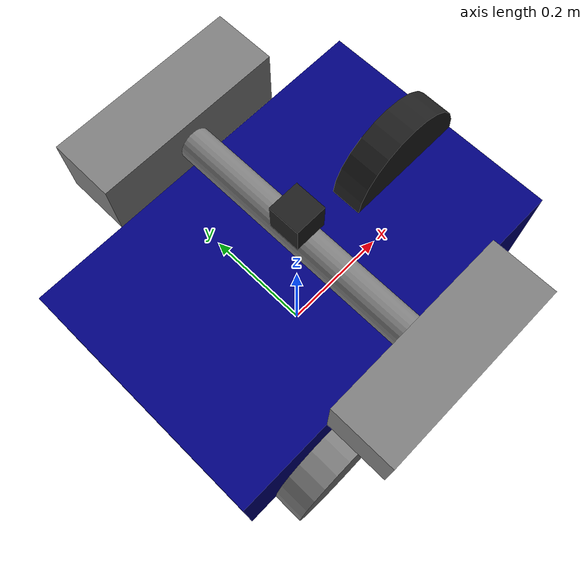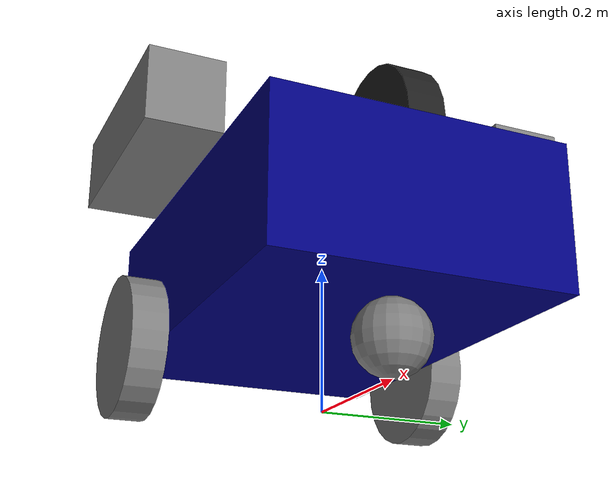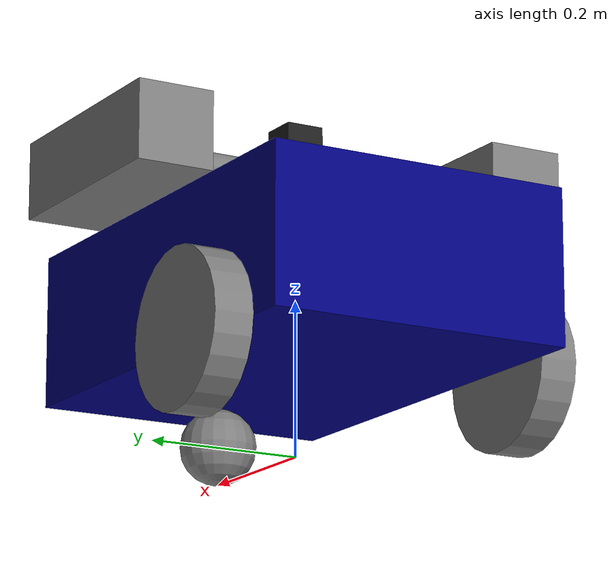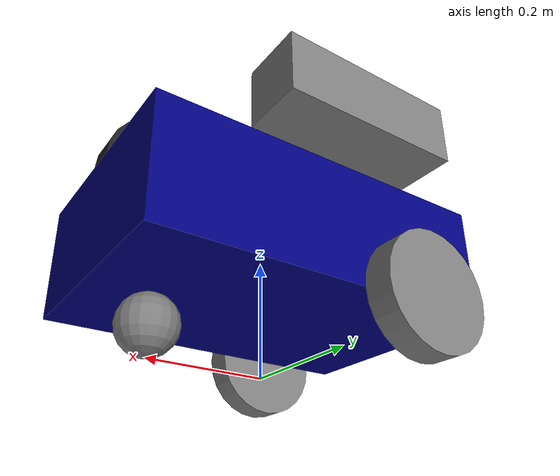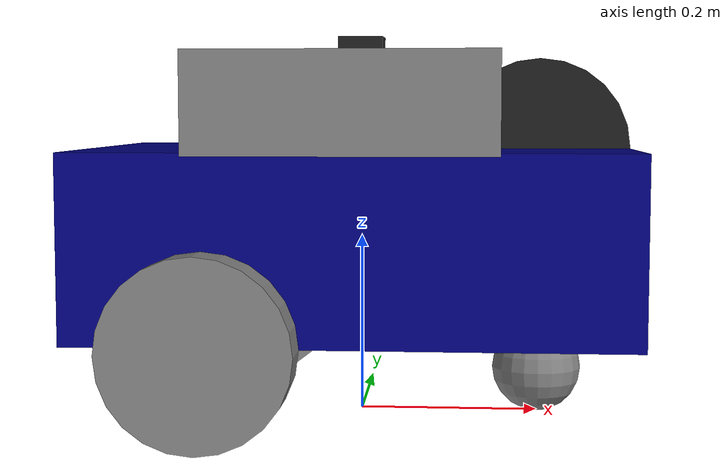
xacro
<?xml version="1.0"?>
<robot name="potatobot" xmlns:xacro="http://www.ros.org/wiki/xacro">

<!--Xacro allows to add in variables, as seen below-->
<!--Include Xacro packages-->
    <xacro:include filename="common_properties.xacro" />
    <xacro:include filename="mobile_base_potatobot_gazebo.xacro" />

<!--Note - you can define more complex components in their own .xacro file to add to the robot file-->
<!--Defining some xacro variables. Defined as xacro:property. Give a name and a value in order to use elsewhere. Changing here will adjust in the whole file.-->
    <xacro:property name="base_length" value="0.6" />
    <xacro:property name="base_width" value="0.4" />
    <xacro:property name="base_height" value="0.2" />
    <xacro:property name="wheel_radius" value="0.1" />
    <xacro:property name="wheel_length" value="0.05" />

    <xacro:property name="pusher_arm_radius" value="0.025" />
    <xacro:property name="pusher_arm_length" value="0.4" />
    <xacro:property name="pusher_length" value="0.1" />
    <xacro:property name="pusher_width" value="0.3" />
    <xacro:property name="pusher_height" value="0.1" />

<!--Materials defied here, no need for exceptional appearance. Color is fine to save resources-->
    <material name="blue">
        <color rgba="0 0 0.5 1" />
    </material>

    <material name="grey">
        <color rgba="0.5 0.5 0.5 1" />
    </material>

    <link name="base_footprint" /> <!--Self closing link tag, no properties-->
    <!--Link tags here. Links are physical structures in the robot. Joints connect links, can be moveable or immovable-->
    <!--Put all links first and then add joints to keep track-->

    <link name="base_link">
        <visual>
            <geometry>
                <box size="${base_length} ${base_width} ${base_height}" />
            </geometry>
            <origin xyz = "0 0 ${base_height / 2}" rpy="0 0 0" /> <!--Define origin of the shape - set to center of object-->
            <material name="blue" /> <!--Xacro defined the material, line 15. Reusing the name calls back to the predefined variable, allowing you to save time and shorthand-->
        </visual>

        <collision>
            <geometry>
                <box size="${base_length} ${base_width} ${base_height}" />
            </geometry>
            <origin xyz = "0 0 ${base_height}/2" rpy="0 0 0" />
        </collision>
        <!--Generally, collision and visual will be the same. The exception is the wheel which uses a sphere collision rather than a cylinder, as it behaves oddly otherwise.-->
        <xacro:box_inertia m="5.0" x="${base_length}" y="${base_width}" z="${base_height}" o_xyz="0 0 ${base_height / 2.0}" o_rpy="0 0 0" />
        <!--Add inertia - taken from common_properties.xacro, predefined. You can define this on your own, but using predefined information is best for now until you understand-->
    </link>

    <!--My first item that I add-->
    <!-- Drill does not need to be in the file until I can get the mesh import working -->

    <link name="right_wheel_link">
        <visual>
            <geometry>
                <cylinder radius="${wheel_radius}" length="${wheel_length}" /> <!--Length is the height of the cylinder-->
            </geometry>
            <origin xyz="0 0 0" rpy="${pi / 2.0} 0 0" /> <!--Rotation done in radians, thus in reference to PI-->
            <material name="grey" />
        </visual>
        <collision>
            <geometry>
                <sphere radius="${wheel_radius}" />
            </geometry>
            <origin xyz="0 0 0" rpy="0 0 0" />
        </collision>
        <xacro:cylinder_inertia m="1.0" r="${wheel_radius}" l="${wheel_length}" o_xyz="0 0 0" o_rpy="${pi / 2.0} 0 0" />
    </link>

        <link name="left_wheel_link">
        <visual>
            <geometry>
                <cylinder radius="${wheel_radius}" length="${wheel_length}" />
            </geometry>
            <origin xyz="0 0 0" rpy="${pi / 2.0} 0 0" />
            <material name="grey" />
        </visual>
        <collision>
            <geometry>
                <sphere radius="${wheel_radius}" />
            </geometry>
            <origin xyz="0 0 0" rpy="0 0 0" />
        </collision>
        <xacro:cylinder_inertia m="1.0" r="${wheel_radius}" l="${wheel_length}" o_xyz="0 0 0" o_rpy="${pi / 2.0} 0 0" />
    </link>

    <link name="caster_wheel_link">
        <visual>
            <geometry>
                <sphere radius="${wheel_radius / 2.0}" />
            </geometry>
            <origin xyz="0 0 0" rpy="0 0 0" />
            <material name="grey" />
        </visual>
        <collision>
            <geometry>
                <sphere radius="${wheel_radius / 2.0}" />
            </geometry>
            <origin xyz="0 0 0" rpy="0 0 0" />
        </collision>
        <xacro:sphere_inertia m="0.5" r="${wheel_radius / 2.0}" o_xyz="0 0 0" o_rpy="0 0 0" />
    </link>

    <!--Top wheel-->
    <link name="top_wheel_link">
        <visual>
            <geometry>
                <cylinder radius="${wheel_radius}" length="${wheel_length}" />
            </geometry>
            <origin xyz="0 0 0" rpy="${pi / 2.0} 0 0" />
            <material name="black" />
        </visual>
        <collision>
            <geometry>
                <sphere radius="${wheel_radius}" />
            </geometry>
            <origin xyz="0 0 0" rpy="0 0 0" />
        </collision>
        <xacro:cylinder_inertia m="1.0" r="${wheel_radius}" l="${wheel_length}" o_xyz="0 0 0" o_rpy="${pi / 2.0} 0 0" />
    </link>

<!--Pushers below-->
        <link name="pusher_arm_link">
        <visual>
            <geometry>
                <cylinder radius="${pusher_arm_radius}" length="${pusher_arm_length}" />
            </geometry>
            <origin xyz="0 0 0" rpy="0 0 0" />
            <material name="grey" />
        </visual>

        <collision>
            <geometry>
                <cylinder radius="${pusher_arm_radius}" length="${pusher_arm_length}" />
            </geometry>
            <origin xyz="0 0 0" rpy="0 0 0" />
        </collision>
        <xacro:cylinder_inertia m="3.0" r="${pusher_arm_radius}" l="${pusher_arm_length}" o_xyz="0 0 0" o_rpy="0 0 0" />
    </link>

    <link name="left_pusher_link">
        <visual>
            <geometry>
                <box size="${pusher_length} ${pusher_width} ${pusher_height}" />
            </geometry>
            <origin xyz="0 0 ${pusher_height/2}" rpy="0 0 0" />
            <material name="grey" />
        </visual>

        <collision>
            <geometry>
                <box size="${pusher_length} ${pusher_width} ${pusher_height}" />
            </geometry>
            <origin xyz="0 0 ${pusher_height/2}" rpy="0 0 0" />
        </collision>
        <xacro:box_inertia m="2.0" x="${pusher_length}" y="${pusher_width}" z="${pusher_height}" o_xyz="0 0 ${pusher_height/2}" o_rpy="0 0 0" />
    </link>

    <link name="right_pusher_link">
        <visual>
            <geometry>
                <box size="${pusher_length} ${pusher_width} ${pusher_height}" />
            </geometry>
            <origin xyz="0 0 ${pusher_height/2}" rpy="0 0 0" />
            <material name="grey" />
        </visual>

        <collision>
            <geometry>
                <box size="${pusher_length} ${pusher_width} ${pusher_height}" />
            </geometry>
            <origin xyz="0 0 ${pusher_height/2}" rpy="0 0 0" />
        </collision>
        <xacro:box_inertia m="2.0" x="${pusher_length}" y="${pusher_width}" z="${pusher_height}" o_xyz="0 0 ${pusher_height/2}" o_rpy="0 0 0" />
    </link>

    <!--Joints here-->
    <!--Joints attach links to each other. DIfferent joint types cause different behaviours. I.E "fixed" disallows movement, would be like welding. COntinuous allows rotation forever. So on.-->
    <!--Origins are where the joint connects the different links - very important to give space for rotation-->
    <joint name="base_joint" type="fixed">
        <parent link="base_footprint" /> <!--Parent is what child is attached to - any rotation will be done as such-->
        <child link="base_link" />
        <origin xyz="0 0 ${wheel_radius}" rpy="0 0 0" />
    </joint>

    <!--My first joint, attaching drill to chassis-->
    <!--Drill commented out-->

    <joint name="base_right_wheel_joint" type="continuous">
        <parent link="base_link" />
        <child link="right_wheel_link" />
        <origin xyz="${-base_length / 4.0} -0.225 0" rpy="0 0 0" />
        <axis xyz="0 1 0" />
    </joint>

    <joint name="base_left_wheel_joint" type="continuous">
        <parent link="base_link" />
        <child link="left_wheel_link" />
        <origin xyz="${-base_length /4.0} 0.225 0" rpy="0 0 0" />
        <axis xyz="0 1 0" />
    </joint>

    <joint name="base_caster_wheel_joint" type="fixed">
        <parent link="base_link" />
        <child link="caster_wheel_link" />
        <origin xyz="${base_length / 3.0} 0 -0.05" rpy="0 0 0" />
    </joint>

    <!-- Top wheel joint-->
    <joint name="base_top_wheel_joint" type="continuous">
        <parent link="base_link" />
        <child link="top_wheel_link" />
        <origin xyz="${base_length / 3.0} 0 ${base_height}" rpy="0 0 0" />
        <axis xyz="0 1 0" />
    </joint>

<!--Pusher joints-->
    <joint name="left_pusher_pusher_arm_joint" type="fixed">
        <parent link="pusher_arm_link" />
        <child link="left_pusher_link" />
        <origin xyz="0 0 ${-pusher_arm_length+pusher_height}" rpy="0 0 0" />
    </joint>

    <joint name="right_pusher_pusher_arm_joint" type="fixed">
        <parent link="pusher_arm_link" />
        <child link="right_pusher_link" />
        <origin xyz="0 0 ${pusher_arm_length-pusher_height*2}" rpy="0 0 0" />
    </joint>

    <joint name="arm_base_joint" type="continuous">
        <parent link="base_link" />
        <child link="pusher_arm_link" />
        <origin xyz="0 0 ${pusher_length/2 + base_height}" rpy="0 -1.571 1.571" />
        <axis xyz="0 0 1" />
    </joint>

    <!--FPV camera - note the sensor tag. Taken from Emiliobot-->
    <link name="camera_link">
        <visual>
            <geometry>
                <box size="0.05 0.05 0.05" />
            </geometry>
            <origin xyz="0 0 0" rpy="0 0 0" />
            <material name="black" />
        </visual>
        <collision>
            <geometry>
                <box size="0.05 0.05 0.05" />
            </geometry>
            <origin xyz="0 0 0" rpy="0 0 0" />
        </collision>
        <inertial>
            <origin xyz="0 0 0" rpy="0 0 0" />
            <mass value="0.1" />
            <inertia
                ixx="0.001" ixy="0.0" ixz="0.0"
                iyy="0.001" iyz="0.0"
                izz="0.001" />
        </inertial>
    </link>

    <joint name="camera_joint" type="fixed">
        <parent link="base_link" />
        <child link="camera_link" />
        <origin xyz="0 0 ${base_height + 0.1}" rpy="0 0 0" />
    </joint>

    <gazebo reference="camera_link">
        <sensor name="front_camera" type="camera">
            <always_on>1</always_on>
            <update_rate>30</update_rate>
            <visualize>true</visualize>

            <camera>
                <horizontal_fov>1.047</horizontal_fov>
                <image>
                    <width>640</width>
                    <height>480</height>
                    <format>R8G8B8</format>
                </image>
                <clip>
                    <near>0.1</near>
                    <far>100.0</far>
                </clip>
            </camera>
        </sensor>
    </gazebo>

</robot>
